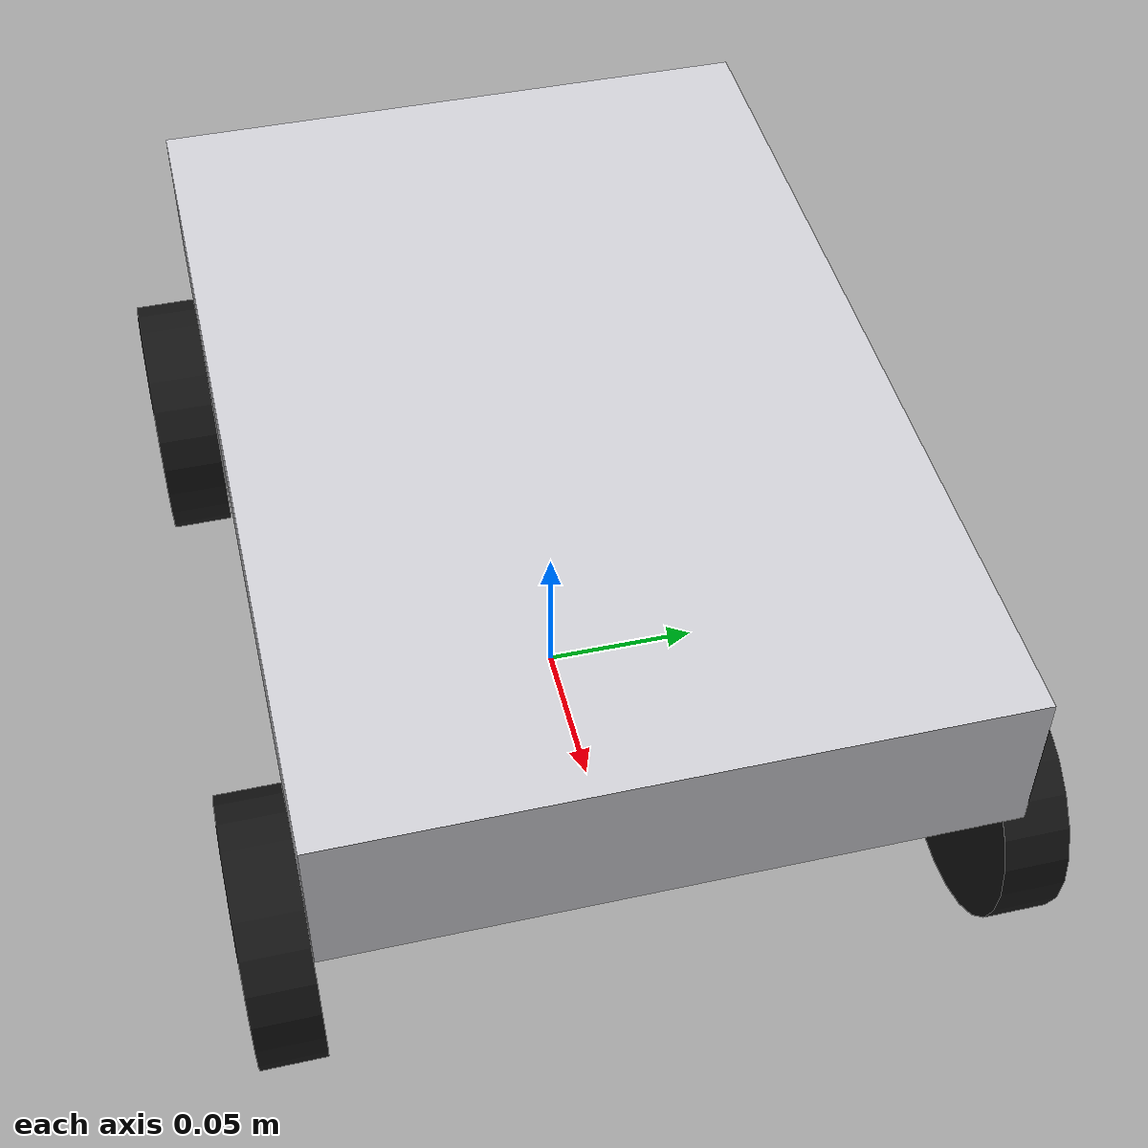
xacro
<?xml version="1.0"?>
<robot name="mobile_robot" xmlns:xacro="http://www.ros.org/wiki/xacro">
  <xacro:include filename="components/mobile_base_macros.xacro"/>

  <xacro:property name="base_length" value="0.3"/>
  <xacro:property name="base_width" value="0.2"/>
  <xacro:property name="base_height" value="0.05"/>
  <xacro:property name="wheel_radius" value="0.04"/>
  <xacro:property name="wheel_length" value="0.02"/>

  <link name="world"/>

  <xacro:four_wheel_base
    prefix=""
    parent="world"
    base_xyz="0 0 ${base_height / 2.0 + 2.0 * wheel_radius}"
    base_length="${base_length}"
    base_width="${base_width}"
    base_height="${base_height}"
    wheel_radius="${wheel_radius}"
    wheel_length="${wheel_length}"/>
</robot>

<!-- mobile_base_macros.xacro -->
<robot xmlns:xacro="http://www.ros.org/wiki/xacro">
  <material name="silver">
    <color rgba="0.80 0.80 0.82 1.0"/>
  </material>
  <material name="black">
    <color rgba="0.08 0.08 0.08 1.0"/>
  </material>

  <xacro:macro name="chassis_link" params="name length width height material:=silver">
    <link name="${name}">
      <visual>
        <geometry>
          <box size="${length} ${width} ${height}"/>
        </geometry>
        <material name="${material}"/>
      </visual>
      <collision>
        <geometry>
          <box size="${length} ${width} ${height}"/>
        </geometry>
      </collision>
    </link>
  </xacro:macro>

  <xacro:macro name="wheel_link" params="name radius length material:=black">
    <link name="${name}">
      <visual>
        <origin xyz="0 0 0" rpy="1.57079632679 0 0"/>
        <geometry>
          <cylinder radius="${radius}" length="${length}"/>
        </geometry>
        <material name="${material}"/>
      </visual>
      <collision>
        <origin xyz="0 0 0" rpy="1.57079632679 0 0"/>
        <geometry>
          <cylinder radius="${radius}" length="${length}"/>
        </geometry>
      </collision>
    </link>
  </xacro:macro>

  <xacro:macro name="wheel_joint" params="name parent child xyz">
    <joint name="${name}" type="continuous">
      <parent link="${parent}"/>
      <child link="${child}"/>
      <origin xyz="${xyz}" rpy="0 0 0"/>
      <axis xyz="0 1 0"/>
    </joint>
  </xacro:macro>

  <xacro:macro
    name="four_wheel_base"
    params="prefix parent base_xyz base_length base_width base_height wheel_radius wheel_length">
    <xacro:chassis_link
      name="${prefix}base_link"
      length="${base_length}"
      width="${base_width}"
      height="${base_height}"/>

    <joint name="${prefix}world_to_base" type="fixed">
      <parent link="${parent}"/>
      <child link="${prefix}base_link"/>
      <origin xyz="${base_xyz}" rpy="0 0 0"/>
    </joint>

    <xacro:property name="wheel_x" value="${base_length / 2.0 - wheel_radius}"/>
    <xacro:property name="wheel_y" value="${base_width / 2.0 + wheel_length / 2.0}"/>
    <xacro:property name="wheel_z" value="${-(base_height / 2.0 + wheel_radius)}"/>

    <xacro:wheel_link name="${prefix}front_left_wheel" radius="${wheel_radius}" length="${wheel_length}"/>
    <xacro:wheel_link name="${prefix}front_right_wheel" radius="${wheel_radius}" length="${wheel_length}"/>
    <xacro:wheel_link name="${prefix}rear_left_wheel" radius="${wheel_radius}" length="${wheel_length}"/>
    <xacro:wheel_link name="${prefix}rear_right_wheel" radius="${wheel_radius}" length="${wheel_length}"/>

    <xacro:wheel_joint
      name="${prefix}front_left_wheel_joint"
      parent="${prefix}base_link"
      child="${prefix}front_left_wheel"
      xyz="${wheel_x} ${wheel_y} ${wheel_z}"/>
    <xacro:wheel_joint
      name="${prefix}front_right_wheel_joint"
      parent="${prefix}base_link"
      child="${prefix}front_right_wheel"
      xyz="${wheel_x} ${-wheel_y} ${wheel_z}"/>
    <xacro:wheel_joint
      name="${prefix}rear_left_wheel_joint"
      parent="${prefix}base_link"
      child="${prefix}rear_left_wheel"
      xyz="${-wheel_x} ${wheel_y} ${wheel_z}"/>
    <xacro:wheel_joint
      name="${prefix}rear_right_wheel_joint"
      parent="${prefix}base_link"
      child="${prefix}rear_right_wheel"
      xyz="${-wheel_x} ${-wheel_y} ${wheel_z}"/>
  </xacro:macro>
</robot>
